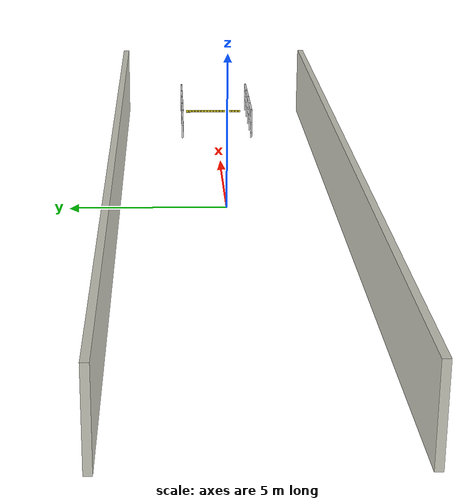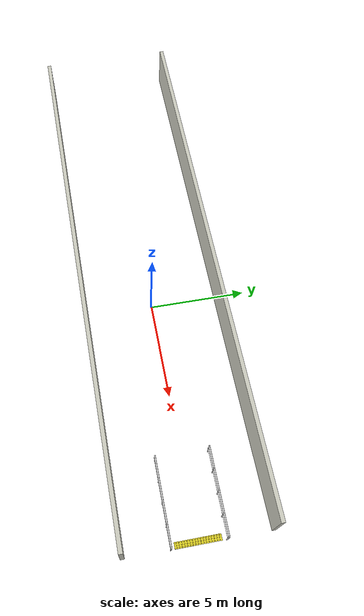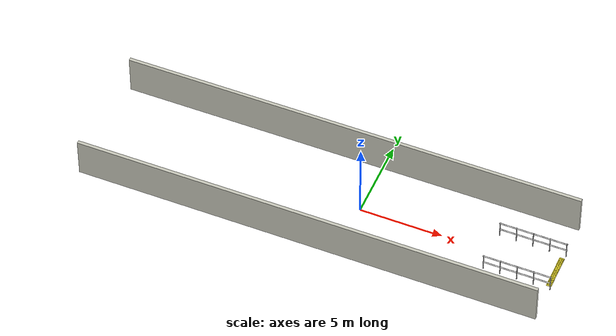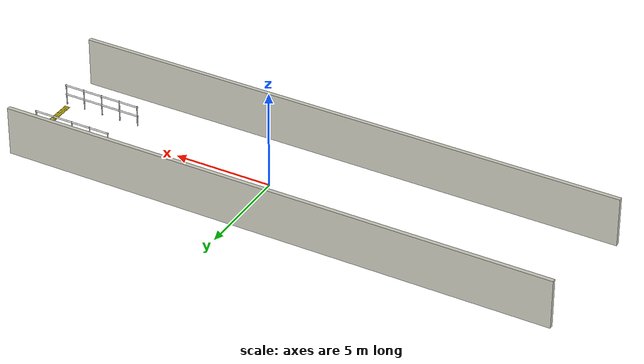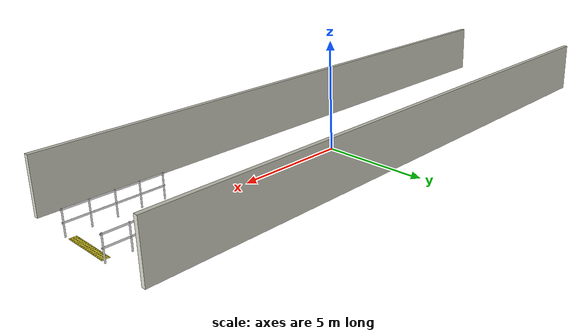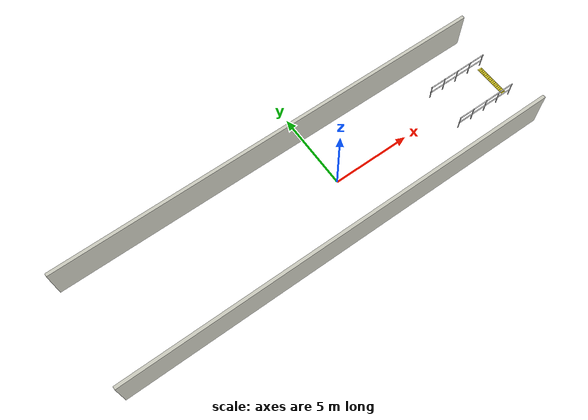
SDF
<sdf version="1.6">
 <world name="default">
  <model name="wall_py">
   <static>true</static>
   <pose>-2 3.5 1.25 0 0 0</pose>
   <link name="link">
    <collision name="c">
     <geometry><box><size>28 0.2 2.5</size></box></geometry>
     <surface><friction><ode><mu>1.0</mu><mu2>1.0</mu2></ode></friction></surface>
    </collision>
    <visual name="v">
     <geometry><box><size>28 0.2 2.5</size></box></geometry>
     <material>
      <script><uri>file://media/materials/scripts/gazebo.material</uri><name>Gazebo/PaintedWall</name></script>
     </material>
    </visual>
   </link>
  </model>
  <model name="wall_my">
   <static>true</static>
   <pose>-2 -3.5 1.25 0 0 0</pose>
   <link name="link">
    <collision name="c">
     <geometry><box><size>28 0.2 2.5</size></box></geometry>
     <surface><friction><ode><mu>1.0</mu><mu2>1.0</mu2></ode></friction></surface>
    </collision>
    <visual name="v">
     <geometry><box><size>28 0.2 2.5</size></box></geometry>
     <material>
      <script><uri>file://media/materials/scripts/gazebo.material</uri><name>Gazebo/PaintedWall</name></script>
     </material>
    </visual>
   </link>
  </model>
  <model name="rail_py">
   <static>true</static>
   <link name="link">
    <collision name="c_s0">
     <pose>8 1.3 0.55 0 0 0</pose>
     <geometry><cylinder><radius>0.03</radius><length>1.1</length></cylinder></geometry>
    </collision>
    <visual name="s0">
     <pose>8 1.3 0.55 0 0 0</pose>
     <geometry><cylinder><radius>0.03</radius><length>1.1</length></cylinder></geometry>
     <material>
      <script><uri>file://media/materials/scripts/gazebo.material</uri><name>Gazebo/White</name></script>
     </material>
    </visual>
    <collision name="c_s1">
     <pose>9 1.3 0.55 0 0 0</pose>
     <geometry><cylinder><radius>0.03</radius><length>1.1</length></cylinder></geometry>
    </collision>
    <visual name="s1">
     <pose>9 1.3 0.55 0 0 0</pose>
     <geometry><cylinder><radius>0.03</radius><length>1.1</length></cylinder></geometry>
     <material>
      <script><uri>file://media/materials/scripts/gazebo.material</uri><name>Gazebo/White</name></script>
     </material>
    </visual>
    <collision name="c_s2">
     <pose>10 1.3 0.55 0 0 0</pose>
     <geometry><cylinder><radius>0.03</radius><length>1.1</length></cylinder></geometry>
    </collision>
    <visual name="s2">
     <pose>10 1.3 0.55 0 0 0</pose>
     <geometry><cylinder><radius>0.03</radius><length>1.1</length></cylinder></geometry>
     <material>
      <script><uri>file://media/materials/scripts/gazebo.material</uri><name>Gazebo/White</name></script>
     </material>
    </visual>
    <collision name="c_s3">
     <pose>11 1.3 0.55 0 0 0</pose>
     <geometry><cylinder><radius>0.03</radius><length>1.1</length></cylinder></geometry>
    </collision>
    <visual name="s3">
     <pose>11 1.3 0.55 0 0 0</pose>
     <geometry><cylinder><radius>0.03</radius><length>1.1</length></cylinder></geometry>
     <material>
      <script><uri>file://media/materials/scripts/gazebo.material</uri><name>Gazebo/White</name></script>
     </material>
    </visual>
    <collision name="c_s4">
     <pose>12 1.3 0.55 0 0 0</pose>
     <geometry><cylinder><radius>0.03</radius><length>1.1</length></cylinder></geometry>
    </collision>
    <visual name="s4">
     <pose>12 1.3 0.55 0 0 0</pose>
     <geometry><cylinder><radius>0.03</radius><length>1.1</length></cylinder></geometry>
     <material>
      <script><uri>file://media/materials/scripts/gazebo.material</uri><name>Gazebo/White</name></script>
     </material>
    </visual>
    <collision name="c_s5">
     <pose>10 1.3 1.05 0 1.5708 0</pose>
     <geometry><cylinder><radius>0.035</radius><length>4.1</length></cylinder></geometry>
    </collision>
    <visual name="s5">
     <pose>10 1.3 1.05 0 1.5708 0</pose>
     <geometry><cylinder><radius>0.035</radius><length>4.1</length></cylinder></geometry>
     <material>
      <script><uri>file://media/materials/scripts/gazebo.material</uri><name>Gazebo/White</name></script>
     </material>
    </visual>
    <collision name="c_s6">
     <pose>10 1.3 0.55 0 1.5708 0</pose>
     <geometry><cylinder><radius>0.035</radius><length>4.1</length></cylinder></geometry>
    </collision>
    <visual name="s6">
     <pose>10 1.3 0.55 0 1.5708 0</pose>
     <geometry><cylinder><radius>0.035</radius><length>4.1</length></cylinder></geometry>
     <material>
      <script><uri>file://media/materials/scripts/gazebo.material</uri><name>Gazebo/White</name></script>
     </material>
    </visual>
   </link>
  </model>
  <model name="rail_my">
   <static>true</static>
   <link name="link">
    <collision name="c_s0">
     <pose>8 -1.3 0.55 0 0 0</pose>
     <geometry><cylinder><radius>0.03</radius><length>1.1</length></cylinder></geometry>
    </collision>
    <visual name="s0">
     <pose>8 -1.3 0.55 0 0 0</pose>
     <geometry><cylinder><radius>0.03</radius><length>1.1</length></cylinder></geometry>
     <material>
      <script><uri>file://media/materials/scripts/gazebo.material</uri><name>Gazebo/White</name></script>
     </material>
    </visual>
    <collision name="c_s1">
     <pose>9 -1.3 0.55 0 0 0</pose>
     <geometry><cylinder><radius>0.03</radius><length>1.1</length></cylinder></geometry>
    </collision>
    <visual name="s1">
     <pose>9 -1.3 0.55 0 0 0</pose>
     <geometry><cylinder><radius>0.03</radius><length>1.1</length></cylinder></geometry>
     <material>
      <script><uri>file://media/materials/scripts/gazebo.material</uri><name>Gazebo/White</name></script>
     </material>
    </visual>
    <collision name="c_s2">
     <pose>10 -1.3 0.55 0 0 0</pose>
     <geometry><cylinder><radius>0.03</radius><length>1.1</length></cylinder></geometry>
    </collision>
    <visual name="s2">
     <pose>10 -1.3 0.55 0 0 0</pose>
     <geometry><cylinder><radius>0.03</radius><length>1.1</length></cylinder></geometry>
     <material>
      <script><uri>file://media/materials/scripts/gazebo.material</uri><name>Gazebo/White</name></script>
     </material>
    </visual>
    <collision name="c_s3">
     <pose>11 -1.3 0.55 0 0 0</pose>
     <geometry><cylinder><radius>0.03</radius><length>1.1</length></cylinder></geometry>
    </collision>
    <visual name="s3">
     <pose>11 -1.3 0.55 0 0 0</pose>
     <geometry><cylinder><radius>0.03</radius><length>1.1</length></cylinder></geometry>
     <material>
      <script><uri>file://media/materials/scripts/gazebo.material</uri><name>Gazebo/White</name></script>
     </material>
    </visual>
    <collision name="c_s4">
     <pose>12 -1.3 0.55 0 0 0</pose>
     <geometry><cylinder><radius>0.03</radius><length>1.1</length></cylinder></geometry>
    </collision>
    <visual name="s4">
     <pose>12 -1.3 0.55 0 0 0</pose>
     <geometry><cylinder><radius>0.03</radius><length>1.1</length></cylinder></geometry>
     <material>
      <script><uri>file://media/materials/scripts/gazebo.material</uri><name>Gazebo/White</name></script>
     </material>
    </visual>
    <collision name="c_s5">
     <pose>10 -1.3 1.05 0 1.5708 0</pose>
     <geometry><cylinder><radius>0.035</radius><length>4.1</length></cylinder></geometry>
    </collision>
    <visual name="s5">
     <pose>10 -1.3 1.05 0 1.5708 0</pose>
     <geometry><cylinder><radius>0.035</radius><length>4.1</length></cylinder></geometry>
     <material>
      <script><uri>file://media/materials/scripts/gazebo.material</uri><name>Gazebo/White</name></script>
     </material>
    </visual>
    <collision name="c_s6">
     <pose>10 -1.3 0.55 0 1.5708 0</pose>
     <geometry><cylinder><radius>0.035</radius><length>4.1</length></cylinder></geometry>
    </collision>
    <visual name="s6">
     <pose>10 -1.3 0.55 0 1.5708 0</pose>
     <geometry><cylinder><radius>0.035</radius><length>4.1</length></cylinder></geometry>
     <material>
      <script><uri>file://media/materials/scripts/gazebo.material</uri><name>Gazebo/White</name></script>
     </material>
    </visual>
   </link>
  </model>
  <model name="warn_strip">
   <static>true</static>
   <link name="link">
    <visual name="slab">
     <pose>11.85 0 0.003 0 0 0</pose>
     <geometry><box><size>0.3 2.2 0.006</size></box></geometry>
     <material>
      <script><uri>file://media/materials/scripts/gazebo.material</uri><name>Gazebo/Yellow</name></script>
     </material>
    </visual>
    <visual name="d0">
     <pose>11.75 -1 0.01 0 0 0</pose>
     <geometry><box><size>0.05 0.05 0.008</size></box></geometry>
     <material>
      <script><uri>file://media/materials/scripts/gazebo.material</uri><name>Gazebo/ZincYellow</name></script>
     </material>
    </visual>
    <visual name="d1">
     <pose>11.75 -0.875 0.01 0 0 0</pose>
     <geometry><box><size>0.05 0.05 0.008</size></box></geometry>
     <material>
      <script><uri>file://media/materials/scripts/gazebo.material</uri><name>Gazebo/ZincYellow</name></script>
     </material>
    </visual>
    <visual name="d2">
     <pose>11.75 -0.75 0.01 0 0 0</pose>
     <geometry><box><size>0.05 0.05 0.008</size></box></geometry>
     <material>
      <script><uri>file://media/materials/scripts/gazebo.material</uri><name>Gazebo/ZincYellow</name></script>
     </material>
    </visual>
    <visual name="d3">
     <pose>11.75 -0.625 0.01 0 0 0</pose>
     <geometry><box><size>0.05 0.05 0.008</size></box></geometry>
     <material>
      <script><uri>file://media/materials/scripts/gazebo.material</uri><name>Gazebo/ZincYellow</name></script>
     </material>
    </visual>
    <visual name="d4">
     <pose>11.75 -0.5 0.01 0 0 0</pose>
     <geometry><box><size>0.05 0.05 0.008</size></box></geometry>
     <material>
      <script><uri>file://media/materials/scripts/gazebo.material</uri><name>Gazebo/ZincYellow</name></script>
     </material>
    </visual>
    <visual name="d5">
     <pose>11.75 -0.375 0.01 0 0 0</pose>
     <geometry><box><size>0.05 0.05 0.008</size></box></geometry>
     <material>
      <script><uri>file://media/materials/scripts/gazebo.material</uri><name>Gazebo/ZincYellow</name></script>
     </material>
    </visual>
    <visual name="d6">
     <pose>11.75 -0.25 0.01 0 0 0</pose>
     <geometry><box><size>0.05 0.05 0.008</size></box></geometry>
     <material>
      <script><uri>file://media/materials/scripts/gazebo.material</uri><name>Gazebo/ZincYellow</name></script>
     </material>
    </visual>
    <visual name="d7">
     <pose>11.75 -0.125 0.01 0 0 0</pose>
     <geometry><box><size>0.05 0.05 0.008</size></box></geometry>
     <material>
      <script><uri>file://media/materials/scripts/gazebo.material</uri><name>Gazebo/ZincYellow</name></script>
     </material>
    </visual>
    <visual name="d8">
     <pose>11.75 0 0.01 0 0 0</pose>
     <geometry><box><size>0.05 0.05 0.008</size></box></geometry>
     <material>
      <script><uri>file://media/materials/scripts/gazebo.material</uri><name>Gazebo/ZincYellow</name></script>
     </material>
    </visual>
    <visual name="d9">
     <pose>11.75 0.125 0.01 0 0 0</pose>
     <geometry><box><size>0.05 0.05 0.008</size></box></geometry>
     <material>
      <script><uri>file://media/materials/scripts/gazebo.material</uri><name>Gazebo/ZincYellow</name></script>
     </material>
    </visual>
    <visual name="d10">
     <pose>11.75 0.25 0.01 0 0 0</pose>
     <geometry><box><size>0.05 0.05 0.008</size></box></geometry>
     <material>
      <script><uri>file://media/materials/scripts/gazebo.material</uri><name>Gazebo/ZincYellow</name></script>
     </material>
    </visual>
    <visual name="d11">
     <pose>11.75 0.375 0.01 0 0 0</pose>
     <geometry><box><size>0.05 0.05 0.008</size></box></geometry>
     <material>
      <script><uri>file://media/materials/scripts/gazebo.material</uri><name>Gazebo/ZincYellow</name></script>
     </material>
    </visual>
    <visual name="d12">
     <pose>11.75 0.5 0.01 0 0 0</pose>
     <geometry><box><size>0.05 0.05 0.008</size></box></geometry>
     <material>
      <script><uri>file://media/materials/scripts/gazebo.material</uri><name>Gazebo/ZincYellow</name></script>
     </material>
    </visual>
    <visual name="d13">
     <pose>11.75 0.625 0.01 0 0 0</pose>
     <geometry><box><size>0.05 0.05 0.008</size></box></geometry>
     <material>
      <script><uri>file://media/materials/scripts/gazebo.material</uri><name>Gazebo/ZincYellow</name></script>
     </material>
    </visual>
    <visual name="d14">
     <pose>11.75 0.75 0.01 0 0 0</pose>
     <geometry><box><size>0.05 0.05 0.008</size></box></geometry>
     <material>
      <script><uri>file://media/materials/scripts/gazebo.material</uri><name>Gazebo/ZincYellow</name></script>
     </material>
    </visual>
    <visual name="d15">
     <pose>11.75 0.875 0.01 0 0 0</pose>
     <geometry><box><size>0.05 0.05 0.008</size></box></geometry>
     <material>
      <script><uri>file://media/materials/scripts/gazebo.material</uri><name>Gazebo/ZincYellow</name></script>
     </material>
    </visual>
    <visual name="d16">
     <pose>11.75 1 0.01 0 0 0</pose>
     <geometry><box><size>0.05 0.05 0.008</size></box></geometry>
     <material>
      <script><uri>file://media/materials/scripts/gazebo.material</uri><name>Gazebo/ZincYellow</name></script>
     </material>
    </visual>
    <visual name="d17">
     <pose>11.85 -1 0.01 0 0 0</pose>
     <geometry><box><size>0.05 0.05 0.008</size></box></geometry>
     <material>
      <script><uri>file://media/materials/scripts/gazebo.material</uri><name>Gazebo/ZincYellow</name></script>
     </material>
    </visual>
    <visual name="d18">
     <pose>11.85 -0.875 0.01 0 0 0</pose>
     <geometry><box><size>0.05 0.05 0.008</size></box></geometry>
     <material>
      <script><uri>file://media/materials/scripts/gazebo.material</uri><name>Gazebo/ZincYellow</name></script>
     </material>
    </visual>
    <visual name="d19">
     <pose>11.85 -0.75 0.01 0 0 0</pose>
     <geometry><box><size>0.05 0.05 0.008</size></box></geometry>
     <material>
      <script><uri>file://media/materials/scripts/gazebo.material</uri><name>Gazebo/ZincYellow</name></script>
     </material>
    </visual>
    <visual name="d20">
     <pose>11.85 -0.625 0.01 0 0 0</pose>
     <geometry><box><size>0.05 0.05 0.008</size></box></geometry>
     <material>
      <script><uri>file://media/materials/scripts/gazebo.material</uri><name>Gazebo/ZincYellow</name></script>
     </material>
    </visual>
    <visual name="d21">
     <pose>11.85 -0.5 0.01 0 0 0</pose>
     <geometry><box><size>0.05 0.05 0.008</size></box></geometry>
     <material>
      <script><uri>file://media/materials/scripts/gazebo.material</uri><name>Gazebo/ZincYellow</name></script>
     </material>
    </visual>
    <visual name="d22">
     <pose>11.85 -0.375 0.01 0 0 0</pose>
     <geometry><box><size>0.05 0.05 0.008</size></box></geometry>
     <material>
      <script><uri>file://media/materials/scripts/gazebo.material</uri><name>Gazebo/ZincYellow</name></script>
     </material>
    </visual>
    <visual name="d23">
     <pose>11.85 -0.25 0.01 0 0 0</pose>
     <geometry><box><size>0.05 0.05 0.008</size></box></geometry>
     <material>
      <script><uri>file://media/materials/scripts/gazebo.material</uri><name>Gazebo/ZincYellow</name></script>
     </material>
    </visual>
    <visual name="d24">
     <pose>11.85 -0.125 0.01 0 0 0</pose>
     <geometry><box><size>0.05 0.05 0.008</size></box></geometry>
     <material>
      <script><uri>file://media/materials/scripts/gazebo.material</uri><name>Gazebo/ZincYellow</name></script>
     </material>
    </visual>
    <visual name="d25">
     <pose>11.85 0 0.01 0 0 0</pose>
     <geometry><box><size>0.05 0.05 0.008</size></box></geometry>
     <material>
      <script><uri>file://media/materials/scripts/gazebo.material</uri><name>Gazebo/ZincYellow</name></script>
     </material>
    </visual>
    <visual name="d26">
     <pose>11.85 0.125 0.01 0 0 0</pose>
     <geometry><box><size>0.05 0.05 0.008</size></box></geometry>
     <material>
      <script><uri>file://media/materials/scripts/gazebo.material</uri><name>Gazebo/ZincYellow</name></script>
     </material>
    </visual>
    <visual name="d27">
     <pose>11.85 0.25 0.01 0 0 0</pose>
     <geometry><box><size>0.05 0.05 0.008</size></box></geometry>
     <material>
      <script><uri>file://media/materials/scripts/gazebo.material</uri><name>Gazebo/ZincYellow</name></script>
     </material>
    </visual>
    <visual name="d28">
     <pose>11.85 0.375 0.01 0 0 0</pose>
     <geometry><box><size>0.05 0.05 0.008</size></box></geometry>
     <material>
      <script><uri>file://media/materials/scripts/gazebo.material</uri><name>Gazebo/ZincYellow</name></script>
     </material>
    </visual>
    <visual name="d29">
     <pose>11.85 0.5 0.01 0 0 0</pose>
     <geometry><box><size>0.05 0.05 0.008</size></box></geometry>
     <material>
      <script><uri>file://media/materials/scripts/gazebo.material</uri><name>Gazebo/ZincYellow</name></script>
     </material>
    </visual>
    <visual name="d30">
     <pose>11.85 0.625 0.01 0 0 0</pose>
     <geometry><box><size>0.05 0.05 0.008</size></box></geometry>
     <material>
      <script><uri>file://media/materials/scripts/gazebo.material</uri><name>Gazebo/ZincYellow</name></script>
     </material>
    </visual>
    <visual name="d31">
     <pose>11.85 0.75 0.01 0 0 0</pose>
     <geometry><box><size>0.05 0.05 0.008</size></box></geometry>
     <material>
      <script><uri>file://media/materials/scripts/gazebo.material</uri><name>Gazebo/ZincYellow</name></script>
     </material>
    </visual>
    <visual name="d32">
     <pose>11.85 0.875 0.01 0 0 0</pose>
     <geometry><box><size>0.05 0.05 0.008</size></box></geometry>
     <material>
      <script><uri>file://media/materials/scripts/gazebo.material</uri><name>Gazebo/ZincYellow</name></script>
     </material>
    </visual>
    <visual name="d33">
     <pose>11.85 1 0.01 0 0 0</pose>
     <geometry><box><size>0.05 0.05 0.008</size></box></geometry>
     <material>
      <script><uri>file://media/materials/scripts/gazebo.material</uri><name>Gazebo/ZincYellow</name></script>
     </material>
    </visual>
    <visual name="d34">
     <pose>11.95 -1 0.01 0 0 0</pose>
     <geometry><box><size>0.05 0.05 0.008</size></box></geometry>
     <material>
      <script><uri>file://media/materials/scripts/gazebo.material</uri><name>Gazebo/ZincYellow</name></script>
     </material>
    </visual>
    <visual name="d35">
     <pose>11.95 -0.875 0.01 0 0 0</pose>
     <geometry><box><size>0.05 0.05 0.008</size></box></geometry>
     <material>
      <script><uri>file://media/materials/scripts/gazebo.material</uri><name>Gazebo/ZincYellow</name></script>
     </material>
    </visual>
    <visual name="d36">
     <pose>11.95 -0.75 0.01 0 0 0</pose>
     <geometry><box><size>0.05 0.05 0.008</size></box></geometry>
     <material>
      <script><uri>file://media/materials/scripts/gazebo.material</uri><name>Gazebo/ZincYellow</name></script>
     </material>
    </visual>
    <visual name="d37">
     <pose>11.95 -0.625 0.01 0 0 0</pose>
     <geometry><box><size>0.05 0.05 0.008</size></box></geometry>
     <material>
      <script><uri>file://media/materials/scripts/gazebo.material</uri><name>Gazebo/ZincYellow</name></script>
     </material>
    </visual>
    <visual name="d38">
     <pose>11.95 -0.5 0.01 0 0 0</pose>
     <geometry><box><size>0.05 0.05 0.008</size></box></geometry>
     <material>
      <script><uri>file://media/materials/scripts/gazebo.material</uri><name>Gazebo/ZincYellow</name></script>
     </material>
    </visual>
    <visual name="d39">
     <pose>11.95 -0.375 0.01 0 0 0</pose>
     <geometry><box><size>0.05 0.05 0.008</size></box></geometry>
     <material>
      <script><uri>file://media/materials/scripts/gazebo.material</uri><name>Gazebo/ZincYellow</name></script>
     </material>
    </visual>
    <visual name="d40">
     <pose>11.95 -0.25 0.01 0 0 0</pose>
     <geometry><box><size>0.05 0.05 0.008</size></box></geometry>
     <material>
      <script><uri>file://media/materials/scripts/gazebo.material</uri><name>Gazebo/ZincYellow</name></script>
     </material>
    </visual>
    <visual name="d41">
     <pose>11.95 -0.125 0.01 0 0 0</pose>
     <geometry><box><size>0.05 0.05 0.008</size></box></geometry>
     <material>
      <script><uri>file://media/materials/scripts/gazebo.material</uri><name>Gazebo/ZincYellow</name></script>
     </material>
    </visual>
    <visual name="d42">
     <pose>11.95 0 0.01 0 0 0</pose>
     <geometry><box><size>0.05 0.05 0.008</size></box></geometry>
     <material>
      <script><uri>file://media/materials/scripts/gazebo.material</uri><name>Gazebo/ZincYellow</name></script>
     </material>
    </visual>
    <visual name="d43">
     <pose>11.95 0.125 0.01 0 0 0</pose>
     <geometry><box><size>0.05 0.05 0.008</size></box></geometry>
     <material>
      <script><uri>file://media/materials/scripts/gazebo.material</uri><name>Gazebo/ZincYellow</name></script>
     </material>
    </visual>
    <visual name="d44">
     <pose>11.95 0.25 0.01 0 0 0</pose>
     <geometry><box><size>0.05 0.05 0.008</size></box></geometry>
     <material>
      <script><uri>file://media/materials/scripts/gazebo.material</uri><name>Gazebo/ZincYellow</name></script>
     </material>
    </visual>
    <visual name="d45">
     <pose>11.95 0.375 0.01 0 0 0</pose>
     <geometry><box><size>0.05 0.05 0.008</size></box></geometry>
     <material>
      <script><uri>file://media/materials/scripts/gazebo.material</uri><name>Gazebo/ZincYellow</name></script>
     </material>
    </visual>
    <visual name="d46">
     <pose>11.95 0.5 0.01 0 0 0</pose>
     <geometry><box><size>0.05 0.05 0.008</size></box></geometry>
     <material>
      <script><uri>file://media/materials/scripts/gazebo.material</uri><name>Gazebo/ZincYellow</name></script>
     </material>
    </visual>
    <visual name="d47">
     <pose>11.95 0.625 0.01 0 0 0</pose>
     <geometry><box><size>0.05 0.05 0.008</size></box></geometry>
     <material>
      <script><uri>file://media/materials/scripts/gazebo.material</uri><name>Gazebo/ZincYellow</name></script>
     </material>
    </visual>
    <visual name="d48">
     <pose>11.95 0.75 0.01 0 0 0</pose>
     <geometry><box><size>0.05 0.05 0.008</size></box></geometry>
     <material>
      <script><uri>file://media/materials/scripts/gazebo.material</uri><name>Gazebo/ZincYellow</name></script>
     </material>
    </visual>
    <visual name="d49">
     <pose>11.95 0.875 0.01 0 0 0</pose>
     <geometry><box><size>0.05 0.05 0.008</size></box></geometry>
     <material>
      <script><uri>file://media/materials/scripts/gazebo.material</uri><name>Gazebo/ZincYellow</name></script>
     </material>
    </visual>
    <visual name="d50">
     <pose>11.95 1 0.01 0 0 0</pose>
     <geometry><box><size>0.05 0.05 0.008</size></box></geometry>
     <material>
      <script><uri>file://media/materials/scripts/gazebo.material</uri><name>Gazebo/ZincYellow</name></script>
     </material>
    </visual>
   </link>
  </model>
  <model name="cam_h03_d10">
   <static>true</static>
   <pose>2 0 0.3 0 0.174533 0</pose>
   <link name="link">
    <sensor name="h03_d10" type="camera">
     <camera name="h03_d10">
      <horizontal_fov>1.047198</horizontal_fov>
      <image><width>1920</width><height>1080</height><format>R8G8B8</format></image>
      <clip><near>0.05</near><far>150</far></clip>
     </camera>
     <always_on>0</always_on>
     <update_rate>1.0</update_rate>
     <visualize>0</visualize>
     <plugin name="plug_h03_d10" filename="libgazebo_ros_camera.so">
      <ros><namespace>/gzcam/h03_d10</namespace></ros>
      <camera_name>cam</camera_name>
      <frame_name>gzcam_h03_d10_optical</frame_name>
      <hack_baseline>0.0</hack_baseline>
     </plugin>
    </sensor>
   </link>
  </model>
  <model name="cam_h09_d10">
   <static>true</static>
   <pose>2 0 0.9 0 0.174533 0</pose>
   <link name="link">
    <sensor name="h09_d10" type="camera">
     <camera name="h09_d10">
      <horizontal_fov>1.047198</horizontal_fov>
      <image><width>1920</width><height>1080</height><format>R8G8B8</format></image>
      <clip><near>0.05</near><far>150</far></clip>
     </camera>
     <always_on>0</always_on>
     <update_rate>1.0</update_rate>
     <visualize>0</visualize>
     <plugin name="plug_h09_d10" filename="libgazebo_ros_camera.so">
      <ros><namespace>/gzcam/h09_d10</namespace></ros>
      <camera_name>cam</camera_name>
      <frame_name>gzcam_h09_d10_optical</frame_name>
      <hack_baseline>0.0</hack_baseline>
     </plugin>
    </sensor>
   </link>
  </model>
 </world>
</sdf>
